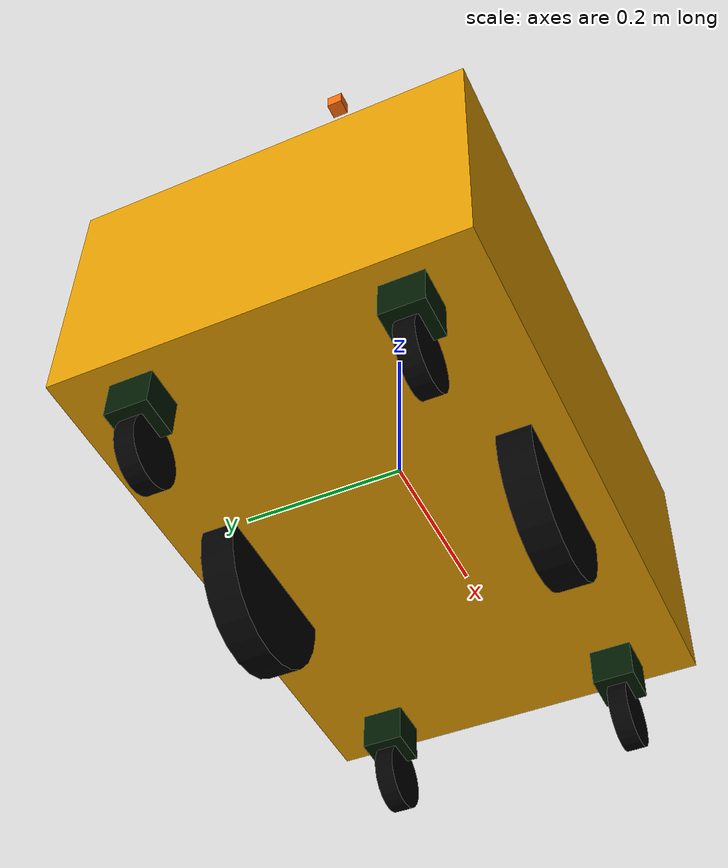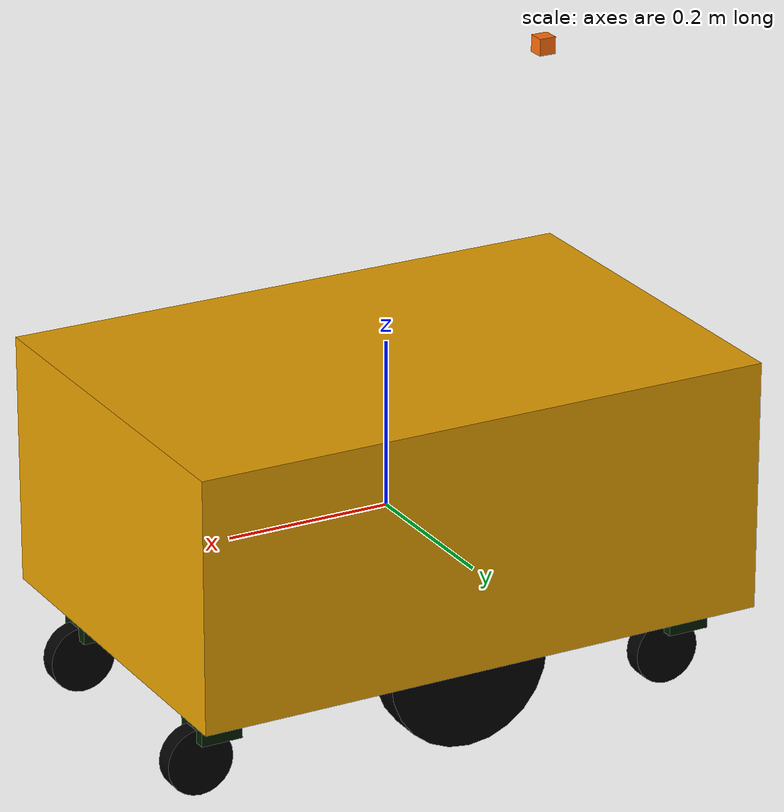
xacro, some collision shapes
<?xml version="1.0"?>
    <robot xmlns:xacro="http://www.ros.org/wiki/xacro"  name="moborobo_short">
        <xacro:include filename="robot_core.xacro" />
        <xacro:include filename="controller.xacro" />
        <xacro:include filename="gps.xacro"/>
    </robot>

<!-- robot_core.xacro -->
<robot xmlns:xacro="http://www.ros.org/wiki/xacro">

    <link name="base_link">
        <visual>
            <geometry>
                <mesh filename="package://magara/meshes/moborobo_short.stl" scale="1 1 1"/>
            </geometry>
        </visual>
        <collision>
            <geometry>
                <box size=".70 .470 .3"/>
            </geometry>
            <origin xyz="0 0 0.04" rpy="0 0 0" />
        </collision>
        <inertial>
            <mass value="20.0"/>
            <inertia ixx="0.51816" ixy="0" ixz="0" iyy="0.966664" iyz="0.0" izz="1.18484"/>
            <origin xyz="0 0 0.06" rpy="0 0 0" />
        </inertial>
    </link>

    <joint name="base_footprint_joint" type="fixed">
        <parent link="base_link"/>
        <child link="base_footprint"/>
        <origin xyz="0 0 0" rpy="0 0 0"/>
    </joint>

    <link name="base_footprint">
    </link>

    <link name="front_caster_1">
        <visual>
            <geometry>
                <box size="0.05 0.05 0.05"/>
            </geometry>
            <material name="green">
                <color rgba="0.0 0.1 0.0 1"/>
            </material>
        </visual>
        <collision>
            <geometry>
                <box size="0.05 0.05 0.05"/>
            </geometry>
        </collision>
        <inertial>
            <mass value="0.5"/>
            <inertia ixx="0.000208332" ixy="0" ixz="0" iyy="0.000208332" iyz="0.0" izz="0.000208332"/>

        </inertial>
    </link>
    <joint name="front_caster_1_joint" type="continuous">
       <axis xyz="0.0 0.0 1"/>
       <parent link="base_link"/>
       <child link="front_caster_1"/>
       <origin xyz="-0.300 0.150 -0.130" rpy="0.0 0.0 0.0"/>
    </joint>

    <link name="front_wheel_1">
        <visual>
            <geometry>
                <cylinder radius="0.04" length="0.0228"/>
            </geometry>
            <material name="black">

            </material>

        </visual>
        <collision>
            <geometry>
                <cylinder radius="0.04" length="0.0228"/>
            </geometry>
        </collision>
        <inertial>
            <mass value="0.5"/>
            <inertia ixx="0.00022166" ixy="0" ixz="0" iyy="0.00022166" iyz="0.0" izz="0.0004"/>
        </inertial>
    </link>

    <joint name="front_wheel_1_joint" type="continuous">
        <axis xyz="0.0 0.0 1"/>
        <parent link="front_caster_1"/>
        <child link="front_wheel_1"/>
        <origin xyz="0.02 0.0 -0.05" rpy="-1.5708 0.0 0.0"/>

    </joint>

    <link name="front_caster_2">
        <visual>
            <geometry>
                <box size="0.05 0.05 0.05"/>
            </geometry>
            <material name="green">
                <color rgba="0.0 0.1 0.0 1"/>
            </material>
        </visual>
        <collision>
            <geometry>
                <box size="0.05 0.05 0.05"/>
            </geometry>
        </collision>
        <inertial>
            <mass value="0.5"/>
            <inertia ixx="0.000208332" ixy="0" ixz="0" iyy="0.000208332" iyz="0.0" izz="0.000208332"/>
        </inertial>
    </link>
    <joint name="front_caster_2_joint" type="continuous">
       <axis xyz="0.0 0.0 1"/>
       <parent link="base_link"/>
       <child link="front_caster_2"/>
       <origin xyz="-0.300 -0.150 -0.130" rpy="0.0 0.0 0.0"/>
    </joint>

    <link name="front_wheel_2">
        <visual>
            <geometry>
                <cylinder radius="0.04" length="0.0228"/>
            </geometry>
            <material name="black">

            </material>

        </visual>
        <collision>
            <geometry>
                <cylinder radius="0.04" length="0.0228"/>
            </geometry>
        </collision>
        <inertial>
            <mass value="0.5"/>
            <inertia ixx="0.00022166" ixy="0" ixz="0" iyy="0.00022166" iyz="0.0" izz="0.0004"/>
        </inertial>
    </link>

    <joint name="front_wheel_2_joint" type="continuous">
        <axis xyz="0.0 0.0 1"/>
        <parent link="front_caster_2"/>
        <child link="front_wheel_2"/>
        <origin xyz="0.02 0.0 -0.05" rpy="-1.5708 0.0 0.0"/>

    </joint>

    <link name="back_caster_1">
        <visual>
            <geometry>
                <box size="0.05 0.05 0.05"/>
            </geometry>
            <material name="green">
                <color rgba="0.0 0.1 0.0 1"/>
            </material>
        </visual>
        <collision>
            <geometry>
                <box size="0.05 0.05 0.05"/>
            </geometry>
        </collision>
        <inertial>
            <mass value="0.5"/>
            <inertia ixx="0.000208332" ixy="0" ixz="0" iyy="0.000208332" iyz="0.0" izz="0.000208332"/>
        </inertial>
    </link>
    <joint name="back_caster_1_joint" type="continuous">
       <axis xyz="0.0 0.0 1"/>
       <parent link="base_link"/>
       <child link="back_caster_1"/>
       <origin xyz="0.300 0.150 -0.130" rpy="0.0 0.0 0.0"/>
    </joint>

    <link name="back_wheel_1">
        <visual>
            <geometry>
                <cylinder radius="0.04" length="0.0228"/>
            </geometry>
            <material name="black">

            </material>

        </visual>
        <collision>
            <geometry>
                <cylinder radius="0.04" length="0.0228"/>
            </geometry>
        </collision>
        <inertial>
            <mass value="0.5"/>
            <inertia ixx="0.00022166" ixy="0" ixz="0" iyy="0.00022166" iyz="0.0" izz="0.0004"/>
        </inertial>
    </link>

    <joint name="back_wheel_1_joint" type="continuous">
        <axis xyz="0.0 0.0 1"/>
        <parent link="back_caster_1"/>
        <child link="back_wheel_1"/>
        <origin xyz="0.02 0.0 -0.05" rpy="-1.5708 0.0 0.0"/>

    </joint>

    <link name="back_caster_2">
        <visual>
            <geometry>
                <box size="0.05 0.05 0.05"/>
            </geometry>
            <material name="green">
                <color rgba="0.0 0.1 0.0 1"/>
            </material>
        </visual>
        <collision>
            <geometry>
                <box size="0.05 0.05 0.05"/>
            </geometry>
        </collision>
        <inertial>
            <mass value="0.5"/>
            <inertia ixx="0.000208332" ixy="0" ixz="0" iyy="0.000208332" iyz="0.0" izz="0.000208332"/>
        </inertial>
    </link>
    <joint name="back_caster_2_joint" type="continuous">
       <axis xyz="0.0 0.0 1"/>
       <parent link="base_link"/>
       <child link="back_caster_2"/>
       <origin xyz="0.300 -0.150 -0.130" rpy="0.0 0.0 0.0"/>
    </joint>

    <link name="back_wheel_2">
        <visual>
            <geometry>
                <cylinder radius="0.04" length="0.0228"/>
            </geometry>
            <material name="black">

            </material>

        </visual>
        <collision>
            <geometry>
                <cylinder radius="0.04" length="0.0228"/>
            </geometry>
        </collision>
        <inertial>
            <mass value="0.5"/>
            <inertia ixx="0.00022166" ixy="0" ixz="0" iyy="0.00022166" iyz="0.0" izz="0.0004"/>
        </inertial>
    </link>

    <joint name="back_wheel_2_joint" type="continuous">
        <axis xyz="0.0 0.0 1"/>
        <parent link="back_caster_2"/>
        <child link="back_wheel_2"/>
        <origin xyz="0.02 0.0 -0.05" rpy="-1.5708 0.0 0.0"/>

    </joint>

<link name="right_wheel">
        <visual>
            <geometry>
                <cylinder radius="0.1" length="0.04"/>
            </geometry>
            <material name="black">
                <color rgba="0.0 0.0 0.0 1"/>
            </material>

        </visual>
        <collision>
            <geometry>
                <cylinder radius="0.1" length="0.04"/>
            </geometry>
        </collision>
        <inertial>
            <mass value="2"/>
            <inertia ixx="0.005066668" ixy="0" ixz="0" iyy="0.005066668" iyz="0.0" izz="0.01"/>        </inertial>
    </link>

    <joint name="right_wheel_joint" type="continuous">
        <axis xyz="0.0 0.0 1"/>
        <parent link="base_link"/>
        <child link="right_wheel"/>
        <origin xyz="0.0 -0.175 -0.120" rpy="-1.5708 0.0 0.0"/>

    </joint>
    <link name="left_wheel">
        <visual>
            <geometry>
                <cylinder radius="0.1" length="0.04"/>
            </geometry>
            <material name="black">
                <color rgba="0.0 0.0 0.0 1"/>
            </material>

        </visual>
        <collision>
            <geometry>
                <cylinder radius="0.1" length="0.04"/>
            </geometry>
        </collision>
        <inertial>
            <mass value="0.5"/>
            <inertia ixx="0.001266667" ixy="0" ixz="0" iyy="0.001266667" iyz="0.0" izz="0.0025"/>        </inertial>
    </link>

    <joint name="left_wheel_joint" type="continuous">
        <axis xyz="0.0 0.0 1"/>
        <parent link="base_link"/>
        <child link="left_wheel"/>
        <origin xyz="0.0 0.175 -0.120" rpy="-1.5708 0.0 0.0"/>

    </joint>

    <gazebo>
        <plugin name="joint_state_publisher"
                filename="libgazebo_ros_joint_state_publisher.so">
            <jointName>front_caster_1_joint, front_wheel_1_joint, front_caster_2_joint, front_wheel_2_joint,
                back_caster_1_joint, back_wheel_1_joint, back_caster_2_joint, back_wheel_2_joint
            </jointName>
        </plugin>
    </gazebo>

    <gazebo reference="front_caster_1">
        <material>Gazebo/White</material>
      </gazebo>
      <gazebo reference="front_wheel_1">
        <material>Gazebo/Black</material>
      </gazebo>
      <gazebo reference="front_caster_2">
        <material>Gazebo/White</material>
      </gazebo>
      <gazebo reference="front_wheel_2">
        <material>Gazebo/Black</material>
      </gazebo>
      <gazebo reference="back_caster_1">
        <material>Gazebo/White</material>
      </gazebo>
      <gazebo reference="back_wheel_1">
        <material>Gazebo/Black</material>
      </gazebo>
      <gazebo reference="back_caster_2">
        <material>Gazebo/White</material>
      </gazebo>
      <gazebo reference="back_wheel_2">
        <material>Gazebo/Black</material>
      </gazebo>
      <gazebo reference="left_wheel">
        <material>Gazebo/Black</material>
      </gazebo>
      <gazebo reference="right_wheel">
        <material>Gazebo/Black</material>
      </gazebo>

    </robot>

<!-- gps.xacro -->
<robot xmlns:xacro="http://www.ros.org/wiki/xacro">

  <joint name="gps_joint" type="fixed">
    <parent link="base_link"/>
    <child link="gps_link"/>
  </joint>

  <link name="gps_link">
    <collision>
      <origin xyz="-0.2 0 0.52" rpy="0 0 0"/>
      <geometry>
        <box size="0.02 0.02 0.02"/>
      </geometry>
    </collision>

    <visual>
      <origin xyz="-0.2 0 0.52" rpy="0 0 0"/>
      <geometry>
        <box size="0.02 0.02 0.02"/>
      </geometry>
      <material name="orange"/>
    </visual>

    <inertial>
      <origin xyz="0 0 1" rpy="0 0 0"/>
      <mass value="1"/>
      <inertia
        ixx="1.0" ixy="0.0" ixz="0.0"
        iyy="1.0" iyz="0.0"
        izz="1.0"/>
    </inertial>
  </link>

  <material name="orange">
    <color rgba="${255/255} ${108/255} ${10/255} 1.0"/>
  </material>
  <gazebo reference="gps_link">
    <material>Gazebo/Orange</material>
  </gazebo>

  <gazebo>
    <plugin name="gazebo_ros_gps" filename="libhector_gazebo_ros_gps.so">
      <updateRate>4.0</updateRate>
      <bodyName>gps_link</bodyName>
      <frameId>gps_link</frameId>
      <topicName>/gps/fix</topicName>
      <velocityTopicName>/gps/fix_velocity</velocityTopicName>
      <referenceLatitude>-30.06022459407145675</referenceLatitude>
      <referenceLongitude>-51.173913575780311191</referenceLongitude>
      <referenceHeading>90</referenceHeading>
      <referenceAltitude>10</referenceAltitude>
      <offset>0 0 0</offset>
      <drift>0.001 0.001 0.001</drift>
      <gaussianNoise>0.05 0.05 0.05</gaussianNoise>
      <velocityDrift>0.001 0.001 0.001</velocityDrift>
      <velocityGaussianNoise>0.5 0.5 0.5</velocityGaussianNoise>
    </plugin>
  </gazebo>

</robot>
